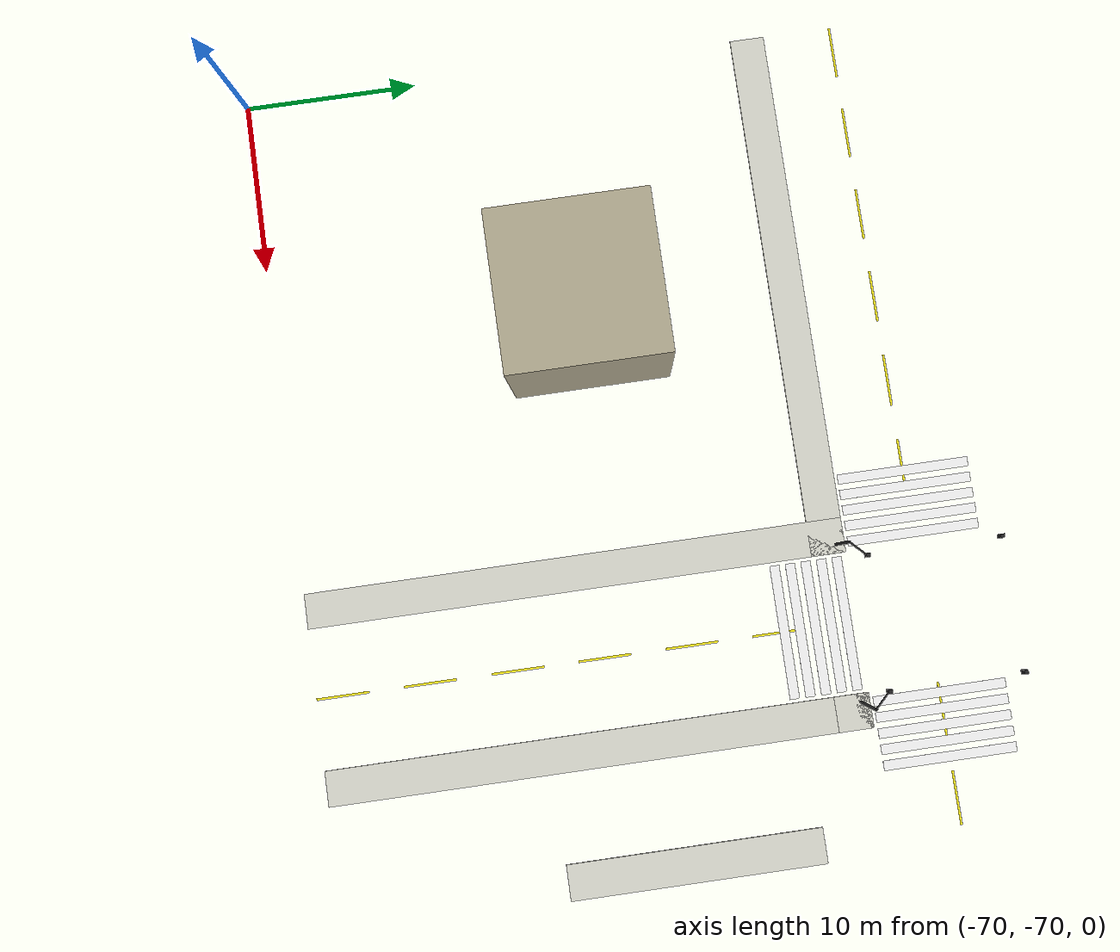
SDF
<sdf version="1.9">
 <world name="city">
  <model name="sw_v_8">
   <static>true</static>
   <pose>-40.0 -54.5 0.065 0 0 0</pose>
   <link name="l">
    <collision name="c"><geometry><box><size>2.0 31.0 0.12</size></box></geometry></collision>
    <visual name="v">
     <geometry><box><size>2.0 31.0 0.12</size></box></geometry>
     <material>
      <ambient>0.82 0.82 0.78 1</ambient>
      <diffuse>0.82 0.82 0.78 1</diffuse>
      <specular>0.04 0.04 0.04 1</specular>
     </material>
    </visual>
   </link>
  </model>
  <model name="sw_v_12">
   <static>true</static>
   <pose>-30.0 -54.5 0.065 0 0 0</pose>
   <link name="l">
    <collision name="c"><geometry><box><size>2.0 31.0 0.12</size></box></geometry></collision>
    <visual name="v">
     <geometry><box><size>2.0 31.0 0.12</size></box></geometry>
     <material>
      <ambient>0.82 0.82 0.78 1</ambient>
      <diffuse>0.82 0.82 0.78 1</diffuse>
      <specular>0.04 0.04 0.04 1</specular>
     </material>
    </visual>
   </link>
  </model>
  <model name="sw_h_32">
   <static>true</static>
   <pose>-54.5 -40.0 0.065 0 0 0</pose>
   <link name="l">
    <collision name="c"><geometry><box><size>31.0 2.0 0.12</size></box></geometry></collision>
    <visual name="v">
     <geometry><box><size>31.0 2.0 0.12</size></box></geometry>
     <material>
      <ambient>0.82 0.82 0.78 1</ambient>
      <diffuse>0.82 0.82 0.78 1</diffuse>
      <specular>0.04 0.04 0.04 1</specular>
     </material>
    </visual>
   </link>
  </model>
  <model name="sw_corner_56">
   <static>true</static>
   <pose>-40.0 -40.0 0.065 0 0 0</pose>
   <link name="l">
    <collision name="c"><geometry><box><size>2.0 2.0 0.12</size></box></geometry></collision>
    <visual name="v">
     <geometry><box><size>2.0 2.0 0.12</size></box></geometry>
     <material>
      <ambient>0.82 0.82 0.78 1</ambient>
      <diffuse>0.82 0.82 0.78 1</diffuse>
      <specular>0.04 0.04 0.04 1</specular>
     </material>
    </visual>
   </link>
  </model>
  <model name="sw_corner_58">
   <static>true</static>
   <pose>-30.0 -40.0 0.065 0 0 0</pose>
   <link name="l">
    <collision name="c"><geometry><box><size>2.0 2.0 0.12</size></box></geometry></collision>
    <visual name="v">
     <geometry><box><size>2.0 2.0 0.12</size></box></geometry>
     <material>
      <ambient>0.82 0.82 0.78 1</ambient>
      <diffuse>0.82 0.82 0.78 1</diffuse>
      <specular>0.04 0.04 0.04 1</specular>
     </material>
    </visual>
   </link>
  </model>
  <model name="cw_s_92">
   <static>true</static>
   <pose>-35.0 -39.575 0.013000000000000001 0 0 0</pose>
   <link name="l">
    <visual name="v">
     <geometry><box><size>7.6 0.55 0.005</size></box></geometry>
     <material>
      <ambient>0.94 0.94 0.94 1</ambient>
      <diffuse>0.94 0.94 0.94 1</diffuse>
      <specular>0.04 0.04 0.04 1</specular>
     </material>
    </visual>
   </link>
  </model>
  <model name="cw_w_94">
   <static>true</static>
   <pose>-39.575 -35.0 0.013000000000000001 0 0 0</pose>
   <link name="l">
    <visual name="v">
     <geometry><box><size>0.55 7.6 0.005</size></box></geometry>
     <material>
      <ambient>0.94 0.94 0.94 1</ambient>
      <diffuse>0.94 0.94 0.94 1</diffuse>
      <specular>0.04 0.04 0.04 1</specular>
     </material>
    </visual>
   </link>
  </model>
  <model name="cw_e_95">
   <static>true</static>
   <pose>-30.425 -35.0 0.013000000000000001 0 0 0</pose>
   <link name="l">
    <visual name="v">
     <geometry><box><size>0.55 7.6 0.005</size></box></geometry>
     <material>
      <ambient>0.94 0.94 0.94 1</ambient>
      <diffuse>0.94 0.94 0.94 1</diffuse>
      <specular>0.04 0.04 0.04 1</specular>
     </material>
    </visual>
   </link>
  </model>
  <model name="cw_s_96">
   <static>true</static>
   <pose>-35.0 -40.475 0.013000000000000001 0 0 0</pose>
   <link name="l">
    <visual name="v">
     <geometry><box><size>7.6 0.55 0.005</size></box></geometry>
     <material>
      <ambient>0.94 0.94 0.94 1</ambient>
      <diffuse>0.94 0.94 0.94 1</diffuse>
      <specular>0.04 0.04 0.04 1</specular>
     </material>
    </visual>
   </link>
  </model>
  <model name="cw_w_98">
   <static>true</static>
   <pose>-40.475 -35.0 0.013000000000000001 0 0 0</pose>
   <link name="l">
    <visual name="v">
     <geometry><box><size>0.55 7.6 0.005</size></box></geometry>
     <material>
      <ambient>0.94 0.94 0.94 1</ambient>
      <diffuse>0.94 0.94 0.94 1</diffuse>
      <specular>0.04 0.04 0.04 1</specular>
     </material>
    </visual>
   </link>
  </model>
  <model name="cw_e_99">
   <static>true</static>
   <pose>-29.525 -35.0 0.013000000000000001 0 0 0</pose>
   <link name="l">
    <visual name="v">
     <geometry><box><size>0.55 7.6 0.005</size></box></geometry>
     <material>
      <ambient>0.94 0.94 0.94 1</ambient>
      <diffuse>0.94 0.94 0.94 1</diffuse>
      <specular>0.04 0.04 0.04 1</specular>
     </material>
    </visual>
   </link>
  </model>
  <model name="cw_s_100">
   <static>true</static>
   <pose>-35.0 -41.375 0.013000000000000001 0 0 0</pose>
   <link name="l">
    <visual name="v">
     <geometry><box><size>7.6 0.55 0.005</size></box></geometry>
     <material>
      <ambient>0.94 0.94 0.94 1</ambient>
      <diffuse>0.94 0.94 0.94 1</diffuse>
      <specular>0.04 0.04 0.04 1</specular>
     </material>
    </visual>
   </link>
  </model>
  <model name="cw_w_102">
   <static>true</static>
   <pose>-41.375 -35.0 0.013000000000000001 0 0 0</pose>
   <link name="l">
    <visual name="v">
     <geometry><box><size>0.55 7.6 0.005</size></box></geometry>
     <material>
      <ambient>0.94 0.94 0.94 1</ambient>
      <diffuse>0.94 0.94 0.94 1</diffuse>
      <specular>0.04 0.04 0.04 1</specular>
     </material>
    </visual>
   </link>
  </model>
  <model name="cw_e_103">
   <static>true</static>
   <pose>-28.625 -35.0 0.013000000000000001 0 0 0</pose>
   <link name="l">
    <visual name="v">
     <geometry><box><size>0.55 7.6 0.005</size></box></geometry>
     <material>
      <ambient>0.94 0.94 0.94 1</ambient>
      <diffuse>0.94 0.94 0.94 1</diffuse>
      <specular>0.04 0.04 0.04 1</specular>
     </material>
    </visual>
   </link>
  </model>
  <model name="cw_s_104">
   <static>true</static>
   <pose>-35.0 -42.275 0.013000000000000001 0 0 0</pose>
   <link name="l">
    <visual name="v">
     <geometry><box><size>7.6 0.55 0.005</size></box></geometry>
     <material>
      <ambient>0.94 0.94 0.94 1</ambient>
      <diffuse>0.94 0.94 0.94 1</diffuse>
      <specular>0.04 0.04 0.04 1</specular>
     </material>
    </visual>
   </link>
  </model>
  <model name="cw_w_106">
   <static>true</static>
   <pose>-42.275 -35.0 0.013000000000000001 0 0 0</pose>
   <link name="l">
    <visual name="v">
     <geometry><box><size>0.55 7.6 0.005</size></box></geometry>
     <material>
      <ambient>0.94 0.94 0.94 1</ambient>
      <diffuse>0.94 0.94 0.94 1</diffuse>
      <specular>0.04 0.04 0.04 1</specular>
     </material>
    </visual>
   </link>
  </model>
  <model name="cw_e_107">
   <static>true</static>
   <pose>-27.725 -35.0 0.013000000000000001 0 0 0</pose>
   <link name="l">
    <visual name="v">
     <geometry><box><size>0.55 7.6 0.005</size></box></geometry>
     <material>
      <ambient>0.94 0.94 0.94 1</ambient>
      <diffuse>0.94 0.94 0.94 1</diffuse>
      <specular>0.04 0.04 0.04 1</specular>
     </material>
    </visual>
   </link>
  </model>
  <model name="cw_s_108">
   <static>true</static>
   <pose>-35.0 -43.175 0.013000000000000001 0 0 0</pose>
   <link name="l">
    <visual name="v">
     <geometry><box><size>7.6 0.55 0.005</size></box></geometry>
     <material>
      <ambient>0.94 0.94 0.94 1</ambient>
      <diffuse>0.94 0.94 0.94 1</diffuse>
      <specular>0.04 0.04 0.04 1</specular>
     </material>
    </visual>
   </link>
  </model>
  <model name="cw_w_110">
   <static>true</static>
   <pose>-43.175 -35.0 0.013000000000000001 0 0 0</pose>
   <link name="l">
    <visual name="v">
     <geometry><box><size>0.55 7.6 0.005</size></box></geometry>
     <material>
      <ambient>0.94 0.94 0.94 1</ambient>
      <diffuse>0.94 0.94 0.94 1</diffuse>
      <specular>0.04 0.04 0.04 1</specular>
     </material>
    </visual>
   </link>
  </model>
  <model name="cw_e_111">
   <static>true</static>
   <pose>-26.825 -35.0 0.013000000000000001 0 0 0</pose>
   <link name="l">
    <visual name="v">
     <geometry><box><size>0.55 7.6 0.005</size></box></geometry>
     <material>
      <ambient>0.94 0.94 0.94 1</ambient>
      <diffuse>0.94 0.94 0.94 1</diffuse>
      <specular>0.04 0.04 0.04 1</specular>
     </material>
    </visual>
   </link>
  </model>
  <model name="dash_272">
   <static>true</static>
   <pose>-35.0 -68.5 0.012 0 0 0</pose>
   <link name="l">
    <visual name="v">
     <geometry><box><size>0.12 3.0 0.003</size></box></geometry>
     <material>
      <ambient>0.95 0.9 0.1 1</ambient>
      <diffuse>0.95 0.9 0.1 1</diffuse>
      <specular>0.04 0.04 0.04 1</specular>
     </material>
    </visual>
   </link>
  </model>
  <model name="dash_273">
   <static>true</static>
   <pose>-35.0 -63.5 0.012 0 0 0</pose>
   <link name="l">
    <visual name="v">
     <geometry><box><size>0.12 3.0 0.003</size></box></geometry>
     <material>
      <ambient>0.95 0.9 0.1 1</ambient>
      <diffuse>0.95 0.9 0.1 1</diffuse>
      <specular>0.04 0.04 0.04 1</specular>
     </material>
    </visual>
   </link>
  </model>
  <model name="dash_274">
   <static>true</static>
   <pose>-35.0 -58.5 0.012 0 0 0</pose>
   <link name="l">
    <visual name="v">
     <geometry><box><size>0.12 3.0 0.003</size></box></geometry>
     <material>
      <ambient>0.95 0.9 0.1 1</ambient>
      <diffuse>0.95 0.9 0.1 1</diffuse>
      <specular>0.04 0.04 0.04 1</specular>
     </material>
    </visual>
   </link>
  </model>
  <model name="dash_275">
   <static>true</static>
   <pose>-35.0 -53.5 0.012 0 0 0</pose>
   <link name="l">
    <visual name="v">
     <geometry><box><size>0.12 3.0 0.003</size></box></geometry>
     <material>
      <ambient>0.95 0.9 0.1 1</ambient>
      <diffuse>0.95 0.9 0.1 1</diffuse>
      <specular>0.04 0.04 0.04 1</specular>
     </material>
    </visual>
   </link>
  </model>
  <model name="dash_276">
   <static>true</static>
   <pose>-35.0 -48.5 0.012 0 0 0</pose>
   <link name="l">
    <visual name="v">
     <geometry><box><size>0.12 3.0 0.003</size></box></geometry>
     <material>
      <ambient>0.95 0.9 0.1 1</ambient>
      <diffuse>0.95 0.9 0.1 1</diffuse>
      <specular>0.04 0.04 0.04 1</specular>
     </material>
    </visual>
   </link>
  </model>
  <model name="dash_277">
   <static>true</static>
   <pose>-35.0 -43.5 0.012 0 0 0</pose>
   <link name="l">
    <visual name="v">
     <geometry><box><size>0.12 3.0 0.003</size></box></geometry>
     <material>
      <ambient>0.95 0.9 0.1 1</ambient>
      <diffuse>0.95 0.9 0.1 1</diffuse>
      <specular>0.04 0.04 0.04 1</specular>
     </material>
    </visual>
   </link>
  </model>
  <model name="dash_338">
   <static>true</static>
   <pose>-68.5 -35.0 0.012 0 0 0</pose>
   <link name="l">
    <visual name="v">
     <geometry><box><size>3.0 0.12 0.003</size></box></geometry>
     <material>
      <ambient>0.95 0.9 0.1 1</ambient>
      <diffuse>0.95 0.9 0.1 1</diffuse>
      <specular>0.04 0.04 0.04 1</specular>
     </material>
    </visual>
   </link>
  </model>
  <model name="dash_339">
   <static>true</static>
   <pose>-63.5 -35.0 0.012 0 0 0</pose>
   <link name="l">
    <visual name="v">
     <geometry><box><size>3.0 0.12 0.003</size></box></geometry>
     <material>
      <ambient>0.95 0.9 0.1 1</ambient>
      <diffuse>0.95 0.9 0.1 1</diffuse>
      <specular>0.04 0.04 0.04 1</specular>
     </material>
    </visual>
   </link>
  </model>
  <model name="dash_340">
   <static>true</static>
   <pose>-58.5 -35.0 0.012 0 0 0</pose>
   <link name="l">
    <visual name="v">
     <geometry><box><size>3.0 0.12 0.003</size></box></geometry>
     <material>
      <ambient>0.95 0.9 0.1 1</ambient>
      <diffuse>0.95 0.9 0.1 1</diffuse>
      <specular>0.04 0.04 0.04 1</specular>
     </material>
    </visual>
   </link>
  </model>
  <model name="dash_341">
   <static>true</static>
   <pose>-53.5 -35.0 0.012 0 0 0</pose>
   <link name="l">
    <visual name="v">
     <geometry><box><size>3.0 0.12 0.003</size></box></geometry>
     <material>
      <ambient>0.95 0.9 0.1 1</ambient>
      <diffuse>0.95 0.9 0.1 1</diffuse>
      <specular>0.04 0.04 0.04 1</specular>
     </material>
    </visual>
   </link>
  </model>
  <model name="dash_342">
   <static>true</static>
   <pose>-48.5 -35.0 0.012 0 0 0</pose>
   <link name="l">
    <visual name="v">
     <geometry><box><size>3.0 0.12 0.003</size></box></geometry>
     <material>
      <ambient>0.95 0.9 0.1 1</ambient>
      <diffuse>0.95 0.9 0.1 1</diffuse>
      <specular>0.04 0.04 0.04 1</specular>
     </material>
    </visual>
   </link>
  </model>
  <model name="dash_343">
   <static>true</static>
   <pose>-43.5 -35.0 0.012 0 0 0</pose>
   <link name="l">
    <visual name="v">
     <geometry><box><size>3.0 0.12 0.003</size></box></geometry>
     <material>
      <ambient>0.95 0.9 0.1 1</ambient>
      <diffuse>0.95 0.9 0.1 1</diffuse>
      <specular>0.04 0.04 0.04 1</specular>
     </material>
    </visual>
   </link>
  </model>
  <model name="dash_344">
   <static>true</static>
   <pose>-29.5 -35.0 0.012 0 0 0</pose>
   <link name="l">
    <visual name="v">
     <geometry><box><size>3.0 0.12 0.003</size></box></geometry>
     <material>
      <ambient>0.95 0.9 0.1 1</ambient>
      <diffuse>0.95 0.9 0.1 1</diffuse>
      <specular>0.04 0.04 0.04 1</specular>
     </material>
    </visual>
   </link>
  </model>
  <model name="dash_345">
   <static>true</static>
   <pose>-24.5 -35.0 0.012 0 0 0</pose>
   <link name="l">
    <visual name="v">
     <geometry><box><size>3.0 0.12 0.003</size></box></geometry>
     <material>
      <ambient>0.95 0.9 0.1 1</ambient>
      <diffuse>0.95 0.9 0.1 1</diffuse>
      <specular>0.04 0.04 0.04 1</specular>
     </material>
    </visual>
   </link>
  </model>
  <model name="lot3_swl_480">
   <static>true</static>
   <pose>-23.0 -50.0 0.065 0 0 0</pose>
   <link name="l">
    <collision name="c"><geometry><box><size>2.0 14.5 0.12</size></box></geometry></collision>
    <visual name="v">
     <geometry><box><size>2.0 14.5 0.12</size></box></geometry>
     <material>
      <ambient>0.82 0.82 0.78 1</ambient>
      <diffuse>0.82 0.82 0.78 1</diffuse>
      <specular>0.04 0.04 0.04 1</specular>
     </material>
    </visual>
   </link>
  </model>
  <model name="tl_-35_-35_0_pole_690">
   <static>true</static>
   <pose>-39.5 -39.5 2.255 0 0 0</pose>
   <link name="l">
    <collision name="c">
     <geometry><cylinder><radius>0.08</radius><length>4.5</length></cylinder></geometry>
    </collision>
    <visual name="v">
     <geometry><cylinder><radius>0.08</radius><length>4.5</length></cylinder></geometry>
     <material><ambient>0.2 0.2 0.2 1</ambient><diffuse>0.2 0.2 0.2 1</diffuse></material>
    </visual>
   </link>
  </model>
  <model name="tl_-35_-35_0_arm_691">
   <static>true</static>
   <pose>-39.07556703849968 -39.07590489133678 4.505 0 0 0.785</pose>
   <link name="l">
    <collision name="c"><geometry><box><size>1.2 0.08 0.08</size></box></geometry></collision>
    <visual name="v">
     <geometry><box><size>1.2 0.08 0.08</size></box></geometry>
     <material>
      <ambient>0.2 0.2 0.2 1</ambient>
      <diffuse>0.2 0.2 0.2 1</diffuse>
      <specular>0.04 0.04 0.04 1</specular>
     </material>
    </visual>
   </link>
  </model>
  <model name="tl_-35_-35_0_hous_692">
   <static>true</static>
   <pose>-38.65113407699936 -38.65180978267356 4.505 0 0 0</pose>
   <link name="l">
    <collision name="c"><geometry><box><size>0.22 0.22 0.65</size></box></geometry></collision>
    <visual name="v">
     <geometry><box><size>0.22 0.22 0.65</size></box></geometry>
     <material>
      <ambient>0.12 0.12 0.12 1</ambient>
      <diffuse>0.12 0.12 0.12 1</diffuse>
      <specular>0.04 0.04 0.04 1</specular>
     </material>
    </visual>
   </link>
  </model>
  <model name="tl_-35_-35_0_l0_693">
   <static>true</static>
   <pose>-38.65113407699936 -38.65180978267356 4.705 0 0 0</pose>
   <link name="l">
    <visual name="v">
     <geometry><sphere><radius>0.07</radius></sphere></geometry>
     <material><ambient>0.95 0.08 0.08 1</ambient><diffuse>0.95 0.08 0.08 1</diffuse></material>
    </visual>
   </link>
  </model>
  <model name="tl_-35_-35_0_l1_694">
   <static>true</static>
   <pose>-38.65113407699936 -38.65180978267356 4.505 0 0 0</pose>
   <link name="l">
    <visual name="v">
     <geometry><sphere><radius>0.07</radius></sphere></geometry>
     <material><ambient>0.9 0.8 0.05 1</ambient><diffuse>0.9 0.8 0.05 1</diffuse></material>
    </visual>
   </link>
  </model>
  <model name="tl_-35_-35_0_l2_695">
   <static>true</static>
   <pose>-38.65113407699936 -38.65180978267356 4.305 0 0 0</pose>
   <link name="l">
    <visual name="v">
     <geometry><sphere><radius>0.07</radius></sphere></geometry>
     <material><ambient>0.05 0.85 0.15 1</ambient><diffuse>0.05 0.85 0.15 1</diffuse></material>
    </visual>
   </link>
  </model>
  <model name="tl_-35_-35_1_pole_696">
   <static>true</static>
   <pose>-30.5 -39.5 2.255 0 0 0</pose>
   <link name="l">
    <collision name="c">
     <geometry><cylinder><radius>0.08</radius><length>4.5</length></cylinder></geometry>
    </collision>
    <visual name="v">
     <geometry><cylinder><radius>0.08</radius><length>4.5</length></cylinder></geometry>
     <material><ambient>0.2 0.2 0.2 1</ambient><diffuse>0.2 0.2 0.2 1</diffuse></material>
    </visual>
   </link>
  </model>
  <model name="tl_-35_-35_1_arm_697">
   <static>true</static>
   <pose>-30.924181545487922 -39.07565342411246 4.505 0 0 2.356</pose>
   <link name="l">
    <collision name="c"><geometry><box><size>1.2 0.08 0.08</size></box></geometry></collision>
    <visual name="v">
     <geometry><box><size>1.2 0.08 0.08</size></box></geometry>
     <material>
      <ambient>0.2 0.2 0.2 1</ambient>
      <diffuse>0.2 0.2 0.2 1</diffuse>
      <specular>0.04 0.04 0.04 1</specular>
     </material>
    </visual>
   </link>
  </model>
  <model name="tl_-35_-35_1_hous_698">
   <static>true</static>
   <pose>-31.34836309097584 -38.65130684822492 4.505 0 0 0</pose>
   <link name="l">
    <collision name="c"><geometry><box><size>0.22 0.22 0.65</size></box></geometry></collision>
    <visual name="v">
     <geometry><box><size>0.22 0.22 0.65</size></box></geometry>
     <material>
      <ambient>0.12 0.12 0.12 1</ambient>
      <diffuse>0.12 0.12 0.12 1</diffuse>
      <specular>0.04 0.04 0.04 1</specular>
     </material>
    </visual>
   </link>
  </model>
  <model name="tl_-35_-35_1_l0_699">
   <static>true</static>
   <pose>-31.34836309097584 -38.65130684822492 4.705 0 0 0</pose>
   <link name="l">
    <visual name="v">
     <geometry><sphere><radius>0.07</radius></sphere></geometry>
     <material><ambient>0.95 0.08 0.08 1</ambient><diffuse>0.95 0.08 0.08 1</diffuse></material>
    </visual>
   </link>
  </model>
  <model name="tl_-35_-35_1_l1_700">
   <static>true</static>
   <pose>-31.34836309097584 -38.65130684822492 4.505 0 0 0</pose>
   <link name="l">
    <visual name="v">
     <geometry><sphere><radius>0.07</radius></sphere></geometry>
     <material><ambient>0.9 0.8 0.05 1</ambient><diffuse>0.9 0.8 0.05 1</diffuse></material>
    </visual>
   </link>
  </model>
  <model name="tl_-35_-35_1_l2_701">
   <static>true</static>
   <pose>-31.34836309097584 -38.65130684822492 4.305 0 0 0</pose>
   <link name="l">
    <visual name="v">
     <geometry><sphere><radius>0.07</radius></sphere></geometry>
     <material><ambient>0.05 0.85 0.15 1</ambient><diffuse>0.05 0.85 0.15 1</diffuse></material>
    </visual>
   </link>
  </model>
  <model name="tl_-35_-35_2_hous_704">
   <static>true</static>
   <pose>-38.65113407699936 -31.34819021732644 4.505 0 0 0</pose>
   <link name="l">
    <collision name="c"><geometry><box><size>0.22 0.22 0.65</size></box></geometry></collision>
    <visual name="v">
     <geometry><box><size>0.22 0.22 0.65</size></box></geometry>
     <material>
      <ambient>0.12 0.12 0.12 1</ambient>
      <diffuse>0.12 0.12 0.12 1</diffuse>
      <specular>0.04 0.04 0.04 1</specular>
     </material>
    </visual>
   </link>
  </model>
  <model name="tl_-35_-35_2_l0_705">
   <static>true</static>
   <pose>-38.65113407699936 -31.34819021732644 4.705 0 0 0</pose>
   <link name="l">
    <visual name="v">
     <geometry><sphere><radius>0.07</radius></sphere></geometry>
     <material><ambient>0.95 0.08 0.08 1</ambient><diffuse>0.95 0.08 0.08 1</diffuse></material>
    </visual>
   </link>
  </model>
  <model name="tl_-35_-35_3_hous_710">
   <static>true</static>
   <pose>-31.34836309097584 -31.348693151775077 4.505 0 0 0</pose>
   <link name="l">
    <collision name="c"><geometry><box><size>0.22 0.22 0.65</size></box></geometry></collision>
    <visual name="v">
     <geometry><box><size>0.22 0.22 0.65</size></box></geometry>
     <material>
      <ambient>0.12 0.12 0.12 1</ambient>
      <diffuse>0.12 0.12 0.12 1</diffuse>
      <specular>0.04 0.04 0.04 1</specular>
     </material>
    </visual>
   </link>
  </model>
  <model name="tl_-35_-35_3_l0_711">
   <static>true</static>
   <pose>-31.34836309097584 -31.348693151775077 4.705 0 0 0</pose>
   <link name="l">
    <visual name="v">
     <geometry><sphere><radius>0.07</radius></sphere></geometry>
     <material><ambient>0.95 0.08 0.08 1</ambient><diffuse>0.95 0.08 0.08 1</diffuse></material>
    </visual>
   </link>
  </model>
  <model name="tl_-35_-35_3_l1_712">
   <static>true</static>
   <pose>-31.34836309097584 -31.348693151775077 4.505 0 0 0</pose>
   <link name="l">
    <visual name="v">
     <geometry><sphere><radius>0.07</radius></sphere></geometry>
     <material><ambient>0.9 0.8 0.05 1</ambient><diffuse>0.9 0.8 0.05 1</diffuse></material>
    </visual>
   </link>
  </model>
  <model name="tl_-35_-35_3_l2_713">
   <static>true</static>
   <pose>-31.34836309097584 -31.348693151775077 4.305 0 0 0</pose>
   <link name="l">
    <visual name="v">
     <geometry><sphere><radius>0.07</radius></sphere></geometry>
     <material><ambient>0.05 0.85 0.15 1</ambient><diffuse>0.05 0.85 0.15 1</diffuse></material>
    </visual>
   </link>
  </model>
  <model name="bld_953">
   <static>true</static>
   <pose>-55 -52.0 4.005 0 0 0</pose>
   <link name="l">
    <collision name="c"><geometry><box><size>9 9 8</size></box></geometry></collision>
    <visual name="v">
     <geometry><box><size>9 9 8</size></box></geometry>
     <material>
      <ambient>0.68 0.65 0.55 1</ambient>
      <diffuse>0.68 0.65 0.55 1</diffuse>
      <specular>0.04 0.04 0.04 1</specular>
     </material>
    </visual>
   </link>
  </model>
 </world>
</sdf>
